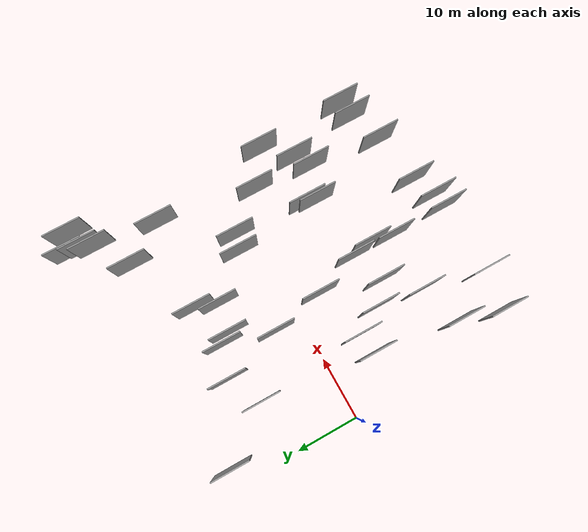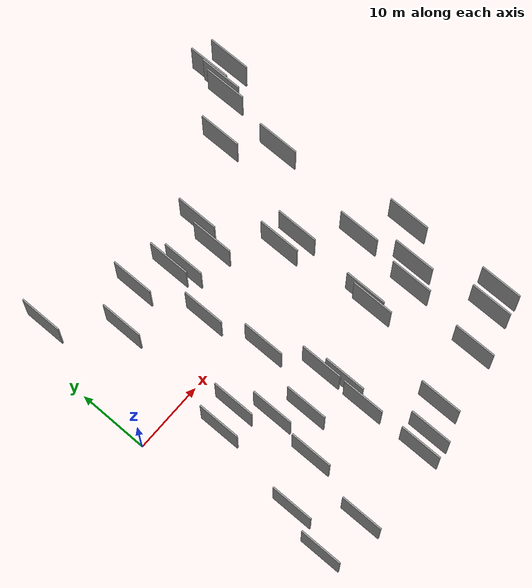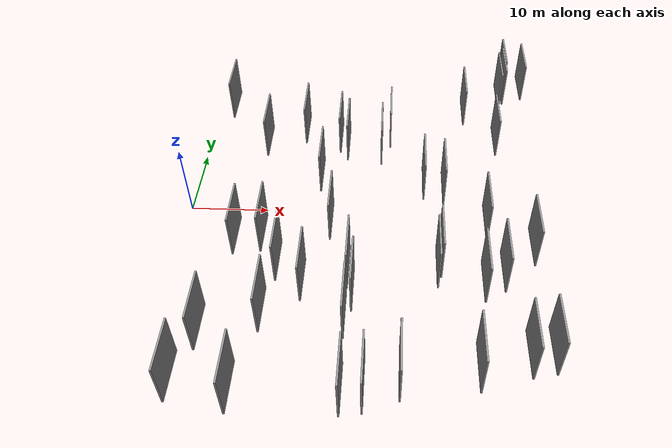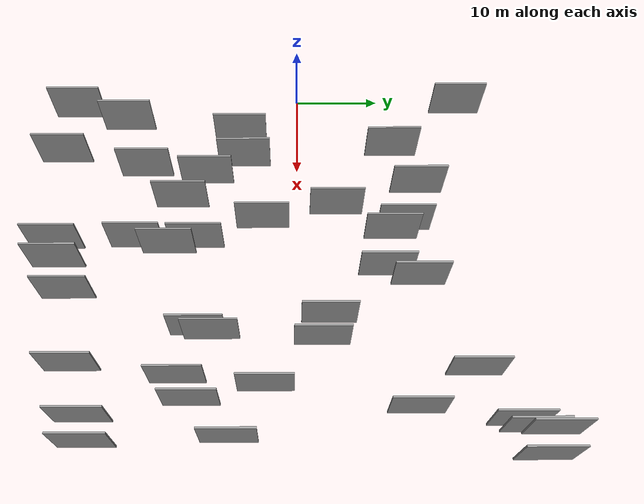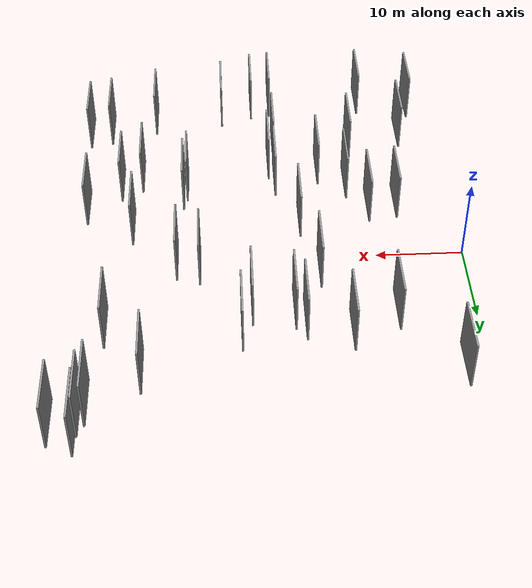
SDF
<sdf version="1.6">
 <world name="default">
  <scene>
   <sky><clouds><speed>12</speed></clouds></sky>
   <ambient>0.4 0.4 0.4 1</ambient>
   <background>0.7 0.7 0.7 1</background>
   <shadows>1</shadows>
  </scene>
  <gravity>0 0 -9.8066</gravity>
  <magnetic_field>6e-06 2.3e-05 -4.2e-05</magnetic_field>
  <physics default="0" name="default_physics" type="ode">
   <ode>
    <solver>
     <type>quick</type>
     <iters>10</iters>
     <sor>1.0</sor>
     <use_dynamic_moi_rescaling>0</use_dynamic_moi_rescaling>
    </solver>
    <constraints>
     <cfm>0</cfm>
     <erp>0.2</erp>
     <contact_max_correcting_vel>100</contact_max_correcting_vel>
     <contact_surface_layer>0.001</contact_surface_layer>
    </constraints>
   </ode>
   <max_step_size>0.004</max_step_size>
   <real_time_factor>1</real_time_factor>
   <real_time_update_rate>250</real_time_update_rate>
  </physics>
  <light name="sun" type="directional">
   <pose>0 0 10 0 0 0</pose>
   <diffuse>0.8 0.8 0.8 1</diffuse>
   <specular>0.2 0.2 0.2 1</specular>
   <attenuation>
    <range>1000</range>
    <constant>0.9</constant>
    <linear>0.01</linear>
    <quadratic>0.001</quadratic>
   </attenuation>
   <direction>-0.5 0.1 -0.9</direction>
  </light>
  <model name="grey_wall_1">
   <static>1</static>
   <pose>41.5938 22.3479 2.5 0.000000 0.000000 1.570796</pose>
   <link name="link">
    <pose>0 0 3.00 0 0 0</pose>
    <collision name="collision"><geometry><box><size>6.00 0.2 6.00</size></box></geometry></collision>
    <visual name="visual">
     <cast_shadows>0</cast_shadows>
     <geometry><box><size>6.00 0.2 6.00</size></box></geometry>
     <material>
      <script>
       <uri>model://grey_wall/materials/scripts</uri>
       <uri>model://grey_wall/materials/textures</uri>
       <name>vrc/grey_wall</name>
      </script>
     </material>
    </visual>
   </link>
  </model>
  <model name="grey_wall_2">
   <static>1</static>
   <pose>14.1870 13.7563 2.5 0.000000 0.000000 1.570796</pose>
   <link name="link">
    <pose>0 0 3.00 0 0 0</pose>
    <collision name="collision"><geometry><box><size>6.00 0.2 6.00</size></box></geometry></collision>
    <visual name="visual">
     <cast_shadows>0</cast_shadows>
     <geometry><box><size>6.00 0.2 6.00</size></box></geometry>
     <material>
      <script>
       <uri>model://grey_wall/materials/scripts</uri>
       <uri>model://grey_wall/materials/textures</uri>
       <name>vrc/grey_wall</name>
      </script>
     </material>
    </visual>
   </link>
  </model>
  <model name="grey_wall_3">
   <static>1</static>
   <pose>20.1302 10.5317 2.5 0.000000 0.000000 1.570796</pose>
   <link name="link">
    <pose>0 0 3.00 0 0 0</pose>
    <collision name="collision"><geometry><box><size>6.00 0.2 6.00</size></box></geometry></collision>
    <visual name="visual">
     <cast_shadows>0</cast_shadows>
     <geometry><box><size>6.00 0.2 6.00</size></box></geometry>
     <material>
      <script>
       <uri>model://grey_wall/materials/scripts</uri>
       <uri>model://grey_wall/materials/textures</uri>
       <name>vrc/grey_wall</name>
      </script>
     </material>
    </visual>
   </link>
  </model>
  <model name="grey_wall_4">
   <static>1</static>
   <pose>3.1007 19.0647 2.5 0.000000 0.000000 1.570796</pose>
   <link name="link">
    <pose>0 0 3.00 0 0 0</pose>
    <collision name="collision"><geometry><box><size>6.00 0.2 6.00</size></box></geometry></collision>
    <visual name="visual">
     <cast_shadows>0</cast_shadows>
     <geometry><box><size>6.00 0.2 6.00</size></box></geometry>
     <material>
      <script>
       <uri>model://grey_wall/materials/scripts</uri>
       <uri>model://grey_wall/materials/textures</uri>
       <name>vrc/grey_wall</name>
      </script>
     </material>
    </visual>
   </link>
  </model>
  <model name="grey_wall_5">
   <static>1</static>
   <pose>37.0420 -12.6441 2.5 0.000000 0.000000 1.570796</pose>
   <link name="link">
    <pose>0 0 3.00 0 0 0</pose>
    <collision name="collision"><geometry><box><size>6.00 0.2 6.00</size></box></geometry></collision>
    <visual name="visual">
     <cast_shadows>0</cast_shadows>
     <geometry><box><size>6.00 0.2 6.00</size></box></geometry>
     <material>
      <script>
       <uri>model://grey_wall/materials/scripts</uri>
       <uri>model://grey_wall/materials/textures</uri>
       <name>vrc/grey_wall</name>
      </script>
     </material>
    </visual>
   </link>
  </model>
  <model name="grey_wall_6">
   <static>1</static>
   <pose>39.4426 -11.0978 2.5 0.000000 0.000000 1.570796</pose>
   <link name="link">
    <pose>0 0 3.00 0 0 0</pose>
    <collision name="collision"><geometry><box><size>6.00 0.2 6.00</size></box></geometry></collision>
    <visual name="visual">
     <cast_shadows>0</cast_shadows>
     <geometry><box><size>6.00 0.2 6.00</size></box></geometry>
     <material>
      <script>
       <uri>model://grey_wall/materials/scripts</uri>
       <uri>model://grey_wall/materials/textures</uri>
       <name>vrc/grey_wall</name>
      </script>
     </material>
    </visual>
   </link>
  </model>
  <model name="grey_wall_7">
   <static>1</static>
   <pose>9.1222 11.0335 2.5 0.000000 0.000000 1.570796</pose>
   <link name="link">
    <pose>0 0 3.00 0 0 0</pose>
    <collision name="collision"><geometry><box><size>6.00 0.2 6.00</size></box></geometry></collision>
    <visual name="visual">
     <cast_shadows>0</cast_shadows>
     <geometry><box><size>6.00 0.2 6.00</size></box></geometry>
     <material>
      <script>
       <uri>model://grey_wall/materials/scripts</uri>
       <uri>model://grey_wall/materials/textures</uri>
       <name>vrc/grey_wall</name>
      </script>
     </material>
    </visual>
   </link>
  </model>
  <model name="grey_wall_8">
   <static>1</static>
   <pose>11.9133 -17.5112 2.5 0.000000 0.000000 1.570796</pose>
   <link name="link">
    <pose>0 0 3.00 0 0 0</pose>
    <collision name="collision"><geometry><box><size>6.00 0.2 6.00</size></box></geometry></collision>
    <visual name="visual">
     <cast_shadows>0</cast_shadows>
     <geometry><box><size>6.00 0.2 6.00</size></box></geometry>
     <material>
      <script>
       <uri>model://grey_wall/materials/scripts</uri>
       <uri>model://grey_wall/materials/textures</uri>
       <name>vrc/grey_wall</name>
      </script>
     </material>
    </visual>
   </link>
  </model>
  <model name="grey_wall_9">
   <static>1</static>
   <pose>19.0357 12.0357 2.5 0.000000 0.000000 1.570796</pose>
   <link name="link">
    <pose>0 0 3.00 0 0 0</pose>
    <collision name="collision"><geometry><box><size>6.00 0.2 6.00</size></box></geometry></collision>
    <visual name="visual">
     <cast_shadows>0</cast_shadows>
     <geometry><box><size>6.00 0.2 6.00</size></box></geometry>
     <material>
      <script>
       <uri>model://grey_wall/materials/scripts</uri>
       <uri>model://grey_wall/materials/textures</uri>
       <name>vrc/grey_wall</name>
      </script>
     </material>
    </visual>
   </link>
  </model>
  <model name="grey_wall_10">
   <static>1</static>
   <pose>21.2546 -11.2656 2.5 0.000000 0.000000 1.570796</pose>
   <link name="link">
    <pose>0 0 3.00 0 0 0</pose>
    <collision name="collision"><geometry><box><size>6.00 0.2 6.00</size></box></geometry></collision>
    <visual name="visual">
     <cast_shadows>0</cast_shadows>
     <geometry><box><size>6.00 0.2 6.00</size></box></geometry>
     <material>
      <script>
       <uri>model://grey_wall/materials/scripts</uri>
       <uri>model://grey_wall/materials/textures</uri>
       <name>vrc/grey_wall</name>
      </script>
     </material>
    </visual>
   </link>
  </model>
  <model name="grey_wall_11">
   <static>1</static>
   <pose>32.1366 -9.2349 2.5 0.000000 0.000000 1.570796</pose>
   <link name="link">
    <pose>0 0 3.00 0 0 0</pose>
    <collision name="collision"><geometry><box><size>6.00 0.2 6.00</size></box></geometry></collision>
    <visual name="visual">
     <cast_shadows>0</cast_shadows>
     <geometry><box><size>6.00 0.2 6.00</size></box></geometry>
     <material>
      <script>
       <uri>model://grey_wall/materials/scripts</uri>
       <uri>model://grey_wall/materials/textures</uri>
       <name>vrc/grey_wall</name>
      </script>
     </material>
    </visual>
   </link>
  </model>
  <model name="grey_wall_12">
   <static>1</static>
   <pose>43.7699 -21.5768 2.5 0.000000 0.000000 1.570796</pose>
   <link name="link">
    <pose>0 0 3.00 0 0 0</pose>
    <collision name="collision"><geometry><box><size>6.00 0.2 6.00</size></box></geometry></collision>
    <visual name="visual">
     <cast_shadows>0</cast_shadows>
     <geometry><box><size>6.00 0.2 6.00</size></box></geometry>
     <material>
      <script>
       <uri>model://grey_wall/materials/scripts</uri>
       <uri>model://grey_wall/materials/textures</uri>
       <name>vrc/grey_wall</name>
      </script>
     </material>
    </visual>
   </link>
  </model>
  <model name="grey_wall_13">
   <static>1</static>
   <pose>42.2726 23.6283 2.5 0.000000 0.000000 1.570796</pose>
   <link name="link">
    <pose>0 0 3.00 0 0 0</pose>
    <collision name="collision"><geometry><box><size>6.00 0.2 6.00</size></box></geometry></collision>
    <visual name="visual">
     <cast_shadows>0</cast_shadows>
     <geometry><box><size>6.00 0.2 6.00</size></box></geometry>
     <material>
      <script>
       <uri>model://grey_wall/materials/scripts</uri>
       <uri>model://grey_wall/materials/textures</uri>
       <name>vrc/grey_wall</name>
      </script>
     </material>
    </visual>
   </link>
  </model>
  <model name="grey_wall_14">
   <static>1</static>
   <pose>3.5929 -26.1175 2.5 0.000000 0.000000 1.570796</pose>
   <link name="link">
    <pose>0 0 3.00 0 0 0</pose>
    <collision name="collision"><geometry><box><size>6.00 0.2 6.00</size></box></geometry></collision>
    <visual name="visual">
     <cast_shadows>0</cast_shadows>
     <geometry><box><size>6.00 0.2 6.00</size></box></geometry>
     <material>
      <script>
       <uri>model://grey_wall/materials/scripts</uri>
       <uri>model://grey_wall/materials/textures</uri>
       <name>vrc/grey_wall</name>
      </script>
     </material>
    </visual>
   </link>
  </model>
  <model name="grey_wall_15">
   <static>1</static>
   <pose>25.8494 13.3088 2.5 0.000000 0.000000 1.570796</pose>
   <link name="link">
    <pose>0 0 3.00 0 0 0</pose>
    <collision name="collision"><geometry><box><size>6.00 0.2 6.00</size></box></geometry></collision>
    <visual name="visual">
     <cast_shadows>0</cast_shadows>
     <geometry><box><size>6.00 0.2 6.00</size></box></geometry>
     <material>
      <script>
       <uri>model://grey_wall/materials/scripts</uri>
       <uri>model://grey_wall/materials/textures</uri>
       <name>vrc/grey_wall</name>
      </script>
     </material>
    </visual>
   </link>
  </model>
  <model name="grey_wall_16">
   <static>1</static>
   <pose>32.8188 2.5948 2.5 0.000000 0.000000 1.570796</pose>
   <link name="link">
    <pose>0 0 3.00 0 0 0</pose>
    <collision name="collision"><geometry><box><size>6.00 0.2 6.00</size></box></geometry></collision>
    <visual name="visual">
     <cast_shadows>0</cast_shadows>
     <geometry><box><size>6.00 0.2 6.00</size></box></geometry>
     <material>
      <script>
       <uri>model://grey_wall/materials/scripts</uri>
       <uri>model://grey_wall/materials/textures</uri>
       <name>vrc/grey_wall</name>
      </script>
     </material>
    </visual>
   </link>
  </model>
  <model name="grey_wall_17">
   <static>1</static>
   <pose>16.9780 4.4166 2.5 0.000000 0.000000 1.570796</pose>
   <link name="link">
    <pose>0 0 3.00 0 0 0</pose>
    <collision name="collision"><geometry><box><size>6.00 0.2 6.00</size></box></geometry></collision>
    <visual name="visual">
     <cast_shadows>0</cast_shadows>
     <geometry><box><size>6.00 0.2 6.00</size></box></geometry>
     <material>
      <script>
       <uri>model://grey_wall/materials/scripts</uri>
       <uri>model://grey_wall/materials/textures</uri>
       <name>vrc/grey_wall</name>
      </script>
     </material>
    </visual>
   </link>
  </model>
  <model name="grey_wall_18">
   <static>1</static>
   <pose>16.0654 -13.1951 2.5 0.000000 0.000000 1.570796</pose>
   <link name="link">
    <pose>0 0 3.00 0 0 0</pose>
    <collision name="collision"><geometry><box><size>6.00 0.2 6.00</size></box></geometry></collision>
    <visual name="visual">
     <cast_shadows>0</cast_shadows>
     <geometry><box><size>6.00 0.2 6.00</size></box></geometry>
     <material>
      <script>
       <uri>model://grey_wall/materials/scripts</uri>
       <uri>model://grey_wall/materials/textures</uri>
       <name>vrc/grey_wall</name>
      </script>
     </material>
    </visual>
   </link>
  </model>
  <model name="grey_wall_19">
   <static>1</static>
   <pose>31.7084 -10.7550 2.5 0.000000 0.000000 1.570796</pose>
   <link name="link">
    <pose>0 0 3.00 0 0 0</pose>
    <collision name="collision"><geometry><box><size>6.00 0.2 6.00</size></box></geometry></collision>
    <visual name="visual">
     <cast_shadows>0</cast_shadows>
     <geometry><box><size>6.00 0.2 6.00</size></box></geometry>
     <material>
      <script>
       <uri>model://grey_wall/materials/scripts</uri>
       <uri>model://grey_wall/materials/textures</uri>
       <name>vrc/grey_wall</name>
      </script>
     </material>
    </visual>
   </link>
  </model>
  <model name="grey_wall_20">
   <static>1</static>
   <pose>30.2840 3.3775 2.5 0.000000 0.000000 1.570796</pose>
   <link name="link">
    <pose>0 0 3.00 0 0 0</pose>
    <collision name="collision"><geometry><box><size>6.00 0.2 6.00</size></box></geometry></collision>
    <visual name="visual">
     <cast_shadows>0</cast_shadows>
     <geometry><box><size>6.00 0.2 6.00</size></box></geometry>
     <material>
      <script>
       <uri>model://grey_wall/materials/scripts</uri>
       <uri>model://grey_wall/materials/textures</uri>
       <name>vrc/grey_wall</name>
      </script>
     </material>
    </visual>
   </link>
  </model>
  <model name="grey_wall_21">
   <static>1</static>
   <pose>7.2874 -6.6401 2.5 0.000000 0.000000 1.570796</pose>
   <link name="link">
    <pose>0 0 3.00 0 0 0</pose>
    <collision name="collision"><geometry><box><size>6.00 0.2 6.00</size></box></geometry></collision>
    <visual name="visual">
     <cast_shadows>0</cast_shadows>
     <geometry><box><size>6.00 0.2 6.00</size></box></geometry>
     <material>
      <script>
       <uri>model://grey_wall/materials/scripts</uri>
       <uri>model://grey_wall/materials/textures</uri>
       <name>vrc/grey_wall</name>
      </script>
     </material>
    </visual>
   </link>
  </model>
  <model name="grey_wall_22">
   <static>1</static>
   <pose>27.4075 -25.1905 2.5 0.000000 0.000000 1.570796</pose>
   <link name="link">
    <pose>0 0 3.00 0 0 0</pose>
    <collision name="collision"><geometry><box><size>6.00 0.2 6.00</size></box></geometry></collision>
    <visual name="visual">
     <cast_shadows>0</cast_shadows>
     <geometry><box><size>6.00 0.2 6.00</size></box></geometry>
     <material>
      <script>
       <uri>model://grey_wall/materials/scripts</uri>
       <uri>model://grey_wall/materials/textures</uri>
       <name>vrc/grey_wall</name>
      </script>
     </material>
    </visual>
   </link>
  </model>
  <model name="grey_wall_23">
   <static>1</static>
   <pose>23.6392 -26.6956 2.5 0.000000 0.000000 1.570796</pose>
   <link name="link">
    <pose>0 0 3.00 0 0 0</pose>
    <collision name="collision"><geometry><box><size>6.00 0.2 6.00</size></box></geometry></collision>
    <visual name="visual">
     <cast_shadows>0</cast_shadows>
     <geometry><box><size>6.00 0.2 6.00</size></box></geometry>
     <material>
      <script>
       <uri>model://grey_wall/materials/scripts</uri>
       <uri>model://grey_wall/materials/textures</uri>
       <name>vrc/grey_wall</name>
      </script>
     </material>
    </visual>
   </link>
  </model>
  <model name="grey_wall_24">
   <static>1</static>
   <pose>21.9105 -14.4284 2.5 0.000000 0.000000 1.570796</pose>
   <link name="link">
    <pose>0 0 3.00 0 0 0</pose>
    <collision name="collision"><geometry><box><size>6.00 0.2 6.00</size></box></geometry></collision>
    <visual name="visual">
     <cast_shadows>0</cast_shadows>
     <geometry><box><size>6.00 0.2 6.00</size></box></geometry>
     <material>
      <script>
       <uri>model://grey_wall/materials/scripts</uri>
       <uri>model://grey_wall/materials/textures</uri>
       <name>vrc/grey_wall</name>
      </script>
     </material>
    </visual>
   </link>
  </model>
  <model name="grey_wall_25">
   <static>1</static>
   <pose>37.8917 -3.3983 2.5 0.000000 0.000000 1.570796</pose>
   <link name="link">
    <pose>0 0 3.00 0 0 0</pose>
    <collision name="collision"><geometry><box><size>6.00 0.2 6.00</size></box></geometry></collision>
    <visual name="visual">
     <cast_shadows>0</cast_shadows>
     <geometry><box><size>6.00 0.2 6.00</size></box></geometry>
     <material>
      <script>
       <uri>model://grey_wall/materials/scripts</uri>
       <uri>model://grey_wall/materials/textures</uri>
       <name>vrc/grey_wall</name>
      </script>
     </material>
    </visual>
   </link>
  </model>
  <model name="grey_wall_26">
   <static>1</static>
   <pose>41.1756 -22.1572 2.5 0.000000 0.000000 1.570796</pose>
   <link name="link">
    <pose>0 0 3.00 0 0 0</pose>
    <collision name="collision"><geometry><box><size>6.00 0.2 6.00</size></box></geometry></collision>
    <visual name="visual">
     <cast_shadows>0</cast_shadows>
     <geometry><box><size>6.00 0.2 6.00</size></box></geometry>
     <material>
      <script>
       <uri>model://grey_wall/materials/scripts</uri>
       <uri>model://grey_wall/materials/textures</uri>
       <name>vrc/grey_wall</name>
      </script>
     </material>
    </visual>
   </link>
  </model>
  <model name="grey_wall_27">
   <static>1</static>
   <pose>43.2868 -7.0839 2.5 0.000000 0.000000 1.570796</pose>
   <link name="link">
    <pose>0 0 3.00 0 0 0</pose>
    <collision name="collision"><geometry><box><size>6.00 0.2 6.00</size></box></geometry></collision>
    <visual name="visual">
     <cast_shadows>0</cast_shadows>
     <geometry><box><size>6.00 0.2 6.00</size></box></geometry>
     <material>
      <script>
       <uri>model://grey_wall/materials/scripts</uri>
       <uri>model://grey_wall/materials/textures</uri>
       <name>vrc/grey_wall</name>
      </script>
     </material>
    </visual>
   </link>
  </model>
  <model name="grey_wall_28">
   <static>1</static>
   <pose>9.9451 -27.1715 2.5 0.000000 0.000000 1.570796</pose>
   <link name="link">
    <pose>0 0 3.00 0 0 0</pose>
    <collision name="collision"><geometry><box><size>6.00 0.2 6.00</size></box></geometry></collision>
    <visual name="visual">
     <cast_shadows>0</cast_shadows>
     <geometry><box><size>6.00 0.2 6.00</size></box></geometry>
     <material>
      <script>
       <uri>model://grey_wall/materials/scripts</uri>
       <uri>model://grey_wall/materials/textures</uri>
       <name>vrc/grey_wall</name>
      </script>
     </material>
    </visual>
   </link>
  </model>
  <model name="grey_wall_29">
   <static>1</static>
   <pose>18.7530 -3.9235 2.5 0.000000 0.000000 1.570796</pose>
   <link name="link">
    <pose>0 0 3.00 0 0 0</pose>
    <collision name="collision"><geometry><box><size>6.00 0.2 6.00</size></box></geometry></collision>
    <visual name="visual">
     <cast_shadows>0</cast_shadows>
     <geometry><box><size>6.00 0.2 6.00</size></box></geometry>
     <material>
      <script>
       <uri>model://grey_wall/materials/scripts</uri>
       <uri>model://grey_wall/materials/textures</uri>
       <name>vrc/grey_wall</name>
      </script>
     </material>
    </visual>
   </link>
  </model>
  <model name="grey_wall_30">
   <static>1</static>
   <pose>21.3419 -27.0411 2.5 0.000000 0.000000 1.570796</pose>
   <link name="link">
    <pose>0 0 3.00 0 0 0</pose>
    <collision name="collision"><geometry><box><size>6.00 0.2 6.00</size></box></geometry></collision>
    <visual name="visual">
     <cast_shadows>0</cast_shadows>
     <geometry><box><size>6.00 0.2 6.00</size></box></geometry>
     <material>
      <script>
       <uri>model://grey_wall/materials/scripts</uri>
       <uri>model://grey_wall/materials/textures</uri>
       <name>vrc/grey_wall</name>
      </script>
     </material>
    </visual>
   </link>
  </model>
  <model name="grey_wall_31">
   <static>1</static>
   <pose>40.2906 12.2112 2.5 0.000000 0.000000 1.570796</pose>
   <link name="link">
    <pose>0 0 3.00 0 0 0</pose>
    <collision name="collision"><geometry><box><size>6.00 0.2 6.00</size></box></geometry></collision>
    <visual name="visual">
     <cast_shadows>0</cast_shadows>
     <geometry><box><size>6.00 0.2 6.00</size></box></geometry>
     <material>
      <script>
       <uri>model://grey_wall/materials/scripts</uri>
       <uri>model://grey_wall/materials/textures</uri>
       <name>vrc/grey_wall</name>
      </script>
     </material>
    </visual>
   </link>
  </model>
  <model name="grey_wall_32">
   <static>1</static>
   <pose>12.8878 -10.4213 2.5 0.000000 0.000000 1.570796</pose>
   <link name="link">
    <pose>0 0 3.00 0 0 0</pose>
    <collision name="collision"><geometry><box><size>6.00 0.2 6.00</size></box></geometry></collision>
    <visual name="visual">
     <cast_shadows>0</cast_shadows>
     <geometry><box><size>6.00 0.2 6.00</size></box></geometry>
     <material>
      <script>
       <uri>model://grey_wall/materials/scripts</uri>
       <uri>model://grey_wall/materials/textures</uri>
       <name>vrc/grey_wall</name>
      </script>
     </material>
    </visual>
   </link>
  </model>
  <model name="grey_wall_33">
   <static>1</static>
   <pose>45.0972 24.7267 2.5 0.000000 0.000000 1.570796</pose>
   <link name="link">
    <pose>0 0 3.00 0 0 0</pose>
    <collision name="collision"><geometry><box><size>6.00 0.2 6.00</size></box></geometry></collision>
    <visual name="visual">
     <cast_shadows>0</cast_shadows>
     <geometry><box><size>6.00 0.2 6.00</size></box></geometry>
     <material>
      <script>
       <uri>model://grey_wall/materials/scripts</uri>
       <uri>model://grey_wall/materials/textures</uri>
       <name>vrc/grey_wall</name>
      </script>
     </material>
    </visual>
   </link>
  </model>
  <model name="grey_wall_34">
   <static>1</static>
   <pose>36.2402 18.5439 2.5 0.000000 0.000000 1.570796</pose>
   <link name="link">
    <pose>0 0 3.00 0 0 0</pose>
    <collision name="collision"><geometry><box><size>6.00 0.2 6.00</size></box></geometry></collision>
    <visual name="visual">
     <cast_shadows>0</cast_shadows>
     <geometry><box><size>6.00 0.2 6.00</size></box></geometry>
     <material>
      <script>
       <uri>model://grey_wall/materials/scripts</uri>
       <uri>model://grey_wall/materials/textures</uri>
       <name>vrc/grey_wall</name>
      </script>
     </material>
    </visual>
   </link>
  </model>
  <model name="grey_wall_35">
   <static>1</static>
   <pose>5.3974 -20.0324 2.5 0.000000 0.000000 1.570796</pose>
   <link name="link">
    <pose>0 0 3.00 0 0 0</pose>
    <collision name="collision"><geometry><box><size>6.00 0.2 6.00</size></box></geometry></collision>
    <visual name="visual">
     <cast_shadows>0</cast_shadows>
     <geometry><box><size>6.00 0.2 6.00</size></box></geometry>
     <material>
      <script>
       <uri>model://grey_wall/materials/scripts</uri>
       <uri>model://grey_wall/materials/textures</uri>
       <name>vrc/grey_wall</name>
      </script>
     </material>
    </visual>
   </link>
  </model>
  <model name="grey_wall_36">
   <static>1</static>
   <pose>24.6844 9.7603 2.5 0.000000 0.000000 1.570796</pose>
   <link name="link">
    <pose>0 0 3.00 0 0 0</pose>
    <collision name="collision"><geometry><box><size>6.00 0.2 6.00</size></box></geometry></collision>
    <visual name="visual">
     <cast_shadows>0</cast_shadows>
     <geometry><box><size>6.00 0.2 6.00</size></box></geometry>
     <material>
      <script>
       <uri>model://grey_wall/materials/scripts</uri>
       <uri>model://grey_wall/materials/textures</uri>
       <name>vrc/grey_wall</name>
      </script>
     </material>
    </visual>
   </link>
  </model>
  <model name="grey_wall_37">
   <static>1</static>
   <pose>10.5615 -6.1510 2.5 0.000000 0.000000 1.570796</pose>
   <link name="link">
    <pose>0 0 3.00 0 0 0</pose>
    <collision name="collision"><geometry><box><size>6.00 0.2 6.00</size></box></geometry></collision>
    <visual name="visual">
     <cast_shadows>0</cast_shadows>
     <geometry><box><size>6.00 0.2 6.00</size></box></geometry>
     <material>
      <script>
       <uri>model://grey_wall/materials/scripts</uri>
       <uri>model://grey_wall/materials/textures</uri>
       <name>vrc/grey_wall</name>
      </script>
     </material>
    </visual>
   </link>
  </model>
  <model name="grey_wall_38">
   <static>1</static>
   <pose>42.4942 25.8898 2.5 0.000000 0.000000 1.570796</pose>
   <link name="link">
    <pose>0 0 3.00 0 0 0</pose>
    <collision name="collision"><geometry><box><size>6.00 0.2 6.00</size></box></geometry></collision>
    <visual name="visual">
     <cast_shadows>0</cast_shadows>
     <geometry><box><size>6.00 0.2 6.00</size></box></geometry>
     <material>
      <script>
       <uri>model://grey_wall/materials/scripts</uri>
       <uri>model://grey_wall/materials/textures</uri>
       <name>vrc/grey_wall</name>
      </script>
     </material>
    </visual>
   </link>
  </model>
  <model name="grey_wall_39">
   <static>1</static>
   <pose>35.6832 -23.9121 2.5 0.000000 0.000000 1.570796</pose>
   <link name="link">
    <pose>0 0 3.00 0 0 0</pose>
    <collision name="collision"><geometry><box><size>6.00 0.2 6.00</size></box></geometry></collision>
    <visual name="visual">
     <cast_shadows>0</cast_shadows>
     <geometry><box><size>6.00 0.2 6.00</size></box></geometry>
     <material>
      <script>
       <uri>model://grey_wall/materials/scripts</uri>
       <uri>model://grey_wall/materials/textures</uri>
       <name>vrc/grey_wall</name>
      </script>
     </material>
    </visual>
   </link>
  </model>
  <model name="grey_wall_40">
   <static>1</static>
   <pose>21.1895 -18.0361 2.5 0.000000 0.000000 1.570796</pose>
   <link name="link">
    <pose>0 0 3.00 0 0 0</pose>
    <collision name="collision"><geometry><box><size>6.00 0.2 6.00</size></box></geometry></collision>
    <visual name="visual">
     <cast_shadows>0</cast_shadows>
     <geometry><box><size>6.00 0.2 6.00</size></box></geometry>
     <material>
      <script>
       <uri>model://grey_wall/materials/scripts</uri>
       <uri>model://grey_wall/materials/textures</uri>
       <name>vrc/grey_wall</name>
      </script>
     </material>
    </visual>
   </link>
  </model>
 </world>
</sdf>
